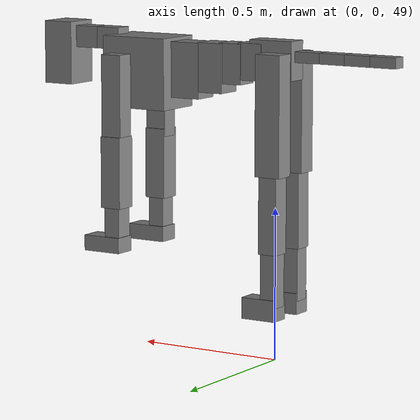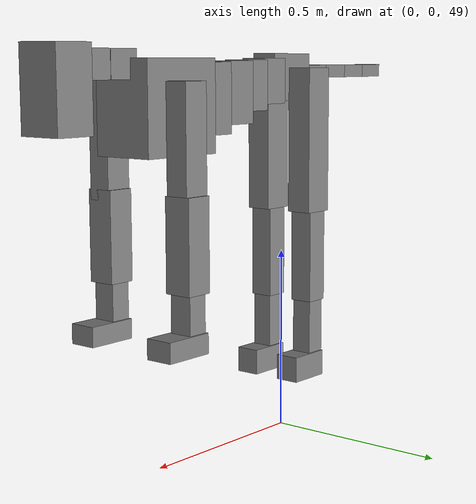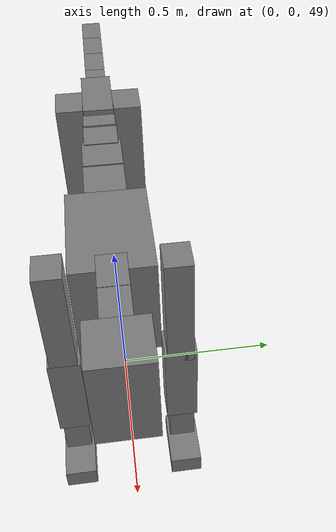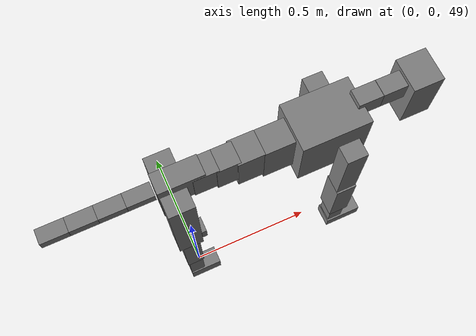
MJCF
<mujoco model="dog">

    <default>
        <joint armature="0.02" stiffness="1" damping="0.2" limited="true" />
        <geom condim="3" friction="1 0.05 0.05" margin="0.01" />
        <motor ctrllimited="true" ctrlrange="-1.0 1.0" forcelimited="true" gear="50" />
    </default>

    <compiler inertiafromgeom="true" angle="radian" />

    <option timestep="0.016" iterations="50" tolerance="1e-10" solver="Newton" jacobian="dense" cone="pyramidal" />

    <size nconmax="20000" njmax="60000" nstack="5000000" />
    <visual>
        <map force="0.1" zfar="30" />
        <rgba haze="0.15 0.25 0.35 1" />
        <quality shadowsize="2048" />
        <global offwidth="800" offheight="800" />
    </visual>

    <asset>
        <texture type="skybox" builtin="gradient" rgb1="0.3 0.5 0.7" rgb2="0 0 0" width="512" height="512" />
        <texture name="texplane" type="2d" builtin="checker" rgb1=".2 .3 .4" rgb2=".1 0.15 0.2" width="512" height="512" mark="cross" markrgb=".8 .8 .8" />
        <texture name="texgeom" type="cube" builtin="flat" mark="cross" width="127" height="1278" rgb1="0.8 0.6 0.4" rgb2="0.8 0.6 0.4" markrgb="1 1 1" random="0.01" />

        <material name="matplane" reflectance="0.3" texture="texplane" texrepeat="1 1" texuniform="true" />
        <material name="matgeom" texture="texgeom" texuniform="true" rgba="0.8 0.6 .4 1" />
    </asset>

    <worldbody>
        <geom name="floor" pos="0 0 0" size="0 0 .25" type="plane" material="matplane" condim="3" />

        <light directional="false" diffuse=".2 .2 .2" specular="0 0 0" pos="0 0 5" dir="0 0 -1" castshadow="false" />
        <light mode="targetbodycom" target="torso" directional="false" diffuse=".8 .8 .8" specular="0.3 0.3 0.3" pos="0 0 4.0" dir="0 0 -1" />

        <body name="root" pos="0 0 50">
            <freejoint name="root_1" />
            <geom type="box" pos="0 0 -0.02" size="0.0774  0.0358  0.063" density="2030" />

            <body name="spine1" pos="0.054 0 0">
                <joint name="spine1_y" axis="0 1 0" range="0 0.7" limited="true" />
                <geom type="box" pos="0.02375 0 -0.03" size="0.04375  0.0375  0.05985" density="2030" />

                <body name="spine2" pos="0.0612 0 0">
                    <joint name="spine2_y" axis="0 1 0" range="-0.15 0.15" limited="true" />
                    <geom type="box" pos="0.03555  0  -0.04" size="0.04055  0.039  0.06615" density="2030" />

                    <body name="spine3" pos="0.0730 0 0">
                        <joint name="spine3_y" axis="0 1 0" range="-0.15 0.15" limited="true" />
                        <geom type="box" pos="0.03555  0  -0.057" size="0.04555  0.0445  0.081" density="2030" />

                        <body name="spine4" pos="0.0780 0 0">
                            <joint name="spine4_y" axis="0 1 0" range="-0.15 0.15" limited="true" />
                            <geom type="box" pos="0.05265  0  -0.07" size="0.05265  0.045  0.09135" density="2030" />

                            <body name="torso" pos="0.1082 0 0">
                                <joint name="torso_y" axis="0 1 0" range="-0.15 0.15" limited="true" />
                                <geom type="box" pos="0.11925  0  -0.085" size="0.11925  0.085  0.11745" density="2030" />

                                <body name="neck1" pos="0.2160  0   0.0180">
                                    <joint name="neck1_y" axis="0 1 0" range="-1.2  -1" limited="true" />
                                    <geom type="box" pos="0.0423  0  0" size="0.0423  0.03  0.036" density="2325" />

                                    <body name="neck2" pos="0.0853  0  0">
                                        <joint name="neck2_y" axis="0 1 0" range="0.1  0" limited="true" />
                                        <geom type="box" pos="0.0423  0  0" size="0.0423  0.03  0.036" density="2325" />

                                        <body name="head" pos="0.0853  0  0">
                                            <joint name="head_y" axis="0 1 0" range="-0.3  -0.2" limited="true" />
                                            <geom type="box" pos="0.0531  0  -0.055" size="0.0531  0.06  0.1044" density="4030" />

                                        </body>
                                    </body>
                                </body>

                                <body name="front_shoulder" pos="0.156  0   -0.0480">
                                    <joint name="front_shoulder_y" axis="0 1 0" range="-1 1.5" limited="true" />
                                    <geom type="box" pos="0 0.13 -0.1212" size="0.0362  0.0309  0.1479" density="1158" />
                                    <geom type="box" pos="0 -0.13 -0.1212" size="0.0362  0.0309  0.1479" density="1158" />

                                    <body name="front_elbow" pos="0  0  -0.2425">
                                        <joint name="front_elbow_y" axis="0 1 0" range="-2 0" limited="true" />
                                        <geom type="box" pos="0 0.13 -0.1177" size="0.0362  0.0370  0.1177" density="1081" />
                                        <geom type="box" pos="0 -0.13 -0.1177" size="0.0362  0.0370  0.1177" density="1081" />

                                        <body name="front_wrist" pos="0  0  -0.2354">
                                            <joint name="front_wrist_y" axis="0 1 0" range="-0.2 0" limited="true" />
                                            <geom type="box" pos="0 0.13 -0.0558" size="0.0274  0.0304  0.0690" density="1664" />
                                            <geom type="box" pos="0 -0.13 -0.0558" size="0.0274  0.0304  0.0690" density="1664" />

                                            <body name="front_finger_end" pos="0  0  -0.1116">
                                                <joint name="front_finger_y" axis="0 1 0" range="-0.4 1" limited="true" />
                                                <geom type="box" pos="0.0368  0.13  -0.0108" size="0.0675  0.0368  0.0258" density="1515" />
                                                <geom type="box" pos="0.0368  -0.13  -0.0108" size="0.0675  0.0368  0.0258" density="1515" />

                                            </body>

                                        </body>
                                    </body>
                                </body>

                            </body>
                        </body>
                    </body>
                </body>
            </body>

            <body name="back_hip" pos="-0.03 0 -0.018">
                <joint name="back_hip_y" axis="0 1 0" range="-1.5 0.3" limited="true" />
                <geom type="box" pos="0 0.07 -0.1726" size="0.0442  0.0347  0.1954" density="1154" />
                <geom type="box" pos="0 -0.07 -0.1726" size="0.0442  0.0347  0.1954" density="1154" />

                <body name="back_knee" pos="0  0  -0.3451">
                    <joint name="back_knee_y" axis="0 1 0" range="0 2.8" limited="true" />
                    <geom type="box" pos="0 0.07 -0.1280" size="0.0321  0.0317  0.1435" density="1227" />
                    <geom type="box" pos="0 -0.07 -0.1280" size="0.0321  0.0317  0.1435" density="1227" />

                    <body name="back_ankle" pos="0  0  -0.2559">
                        <joint name="back_ankle_y" axis="0 1 0" range="-2.2 0" limited="true" />
                        <geom type="box" pos="0 0.07 -0.0884" size="0.0278  0.0278  0.0996" density="1284" />
                        <geom type="box" pos="0 -0.07 -0.0884" size="0.0278  0.0278  0.0996" density="1284" />

                        <body name="back_toe_end" pos="0  0  -0.1768">
                            <joint name="back_toe_y" axis="0 1 0" range="-0.4 1" limited="true" />
                            <geom type="box" pos="0.0331  0.07  -0.0197" size="0.0607  0.0331  0.0347" density="1515" />
                            <geom type="box" pos="0.0331  -0.07  -0.0197" size="0.0607  0.0331  0.0347" density="1515" />

                        </body>
                    </body>
                </body>
            </body>

            <body name="tail1" pos="-0.074 0 -0.006">
                <joint name="tail1_y" axis="0 1 0" range="-0.2 0.2" limited="true" />
                <geom type="box" pos="-0.0536  0  0" size="0.045  0.025  0.0175" density="1587" />

                <body name="tail2" pos="-0.09 0 0">
                    <joint name="tail2_y" axis="0 1 0" range="-0.2 0.2" limited="true" />
                    <geom type="box" pos="-0.0536  0  0" size="0.045  0.025  0.0175" density="1587" />

                    <body name="tail3" pos="-0.09 0 0">
                        <joint name="tail3_y" axis="0 1 0" range="-0.2 0.2" limited="true" />
                        <geom type="box" pos="-0.0536  0  0" size="0.045  0.025  0.0175" density="1587" />

                        <body name="tail4" pos="-0.09 0 0">
                            <joint name="tail4_y" axis="0 1 0" range="-0.2 0.2" limited="true" />
                            <geom type="box" pos="-0.0536  0  0" size="0.045  0.025  0.0175" density="1587" />

                        </body>
                    </body>
                </body>
            </body>
        </body>
    </worldbody>

    <actuator>
        <motor joint="spine1_y" forcerange="-150 150     " />
        <motor joint="spine2_y" forcerange="-150 150     " />
        <motor joint="spine3_y" forcerange="-150 150     " />
        <motor joint="spine4_y" forcerange="-150 150     " />
        <motor joint="torso_y" forcerange="-150 150     " />
        <motor joint="neck1_y" forcerange="-100 100       " />
        <motor joint="neck2_y" forcerange="-100 100       " />
        <motor joint="head_y" forcerange="-150 150       " />
        <motor joint="front_shoulder_y" forcerange="-155.16 150.96" />
        <motor joint="front_elbow_y" forcerange="-193.36 175.91" />
        <motor joint="front_wrist_y" forcerange="-101.46 142.14" />
        <motor joint="front_finger_y" forcerange="-81.40 74.93" />
        <motor joint="back_hip_y" forcerange="-340.42 322.29" />
        <motor joint="back_knee_y" forcerange="-352.42 308.05" />
        <motor joint="back_angle_y" forcerange="-186.51 158.53" />
        <motor joint="back_toe_y" forcerange="-91.43 93.28" />
        <motor joint="tail1_y" forcerange="-50 50     " />
        <motor joint="tail2_y" forcerange="-50 50     " />
        <motor joint="tail3_y" forcerange="-50 50     " />
        <motor joint="tail4_y" forcerange="-50 50     " />
    </actuator>
</mujoco>
